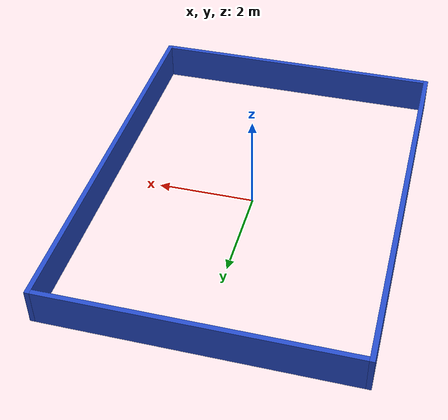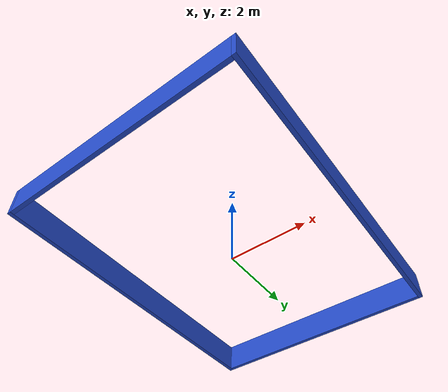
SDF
<?xml version="1.0" ?>
<sdf version='1.6'>
    <model name='Fence'>
        <static>true</static>
        <!-- Fence_Up -->
        <link name="fence_up">
            <pose>3.05 0 0.375 0 0 0</pose>
            <collision name="visual">
                <geometry>
                    <box>
                        <size>0.1 8.2 0.75</size>
                    </box>
                </geometry>
            </collision>
            <visual name="visual">
                <geometry>
                    <box>
                        <size>0.1 8.2 0.75</size>
                    </box>
                </geometry>
                <material>
                    <script>
                        <uri>file://media/materials/scripts/gazebo.material</uri>
                        <name>Gazebo/Blue</name>
                    </script>
                </material>
            </visual>
        </link>
        <!-- Fence_Down -->
        <link name="fence_down">
            <pose>-3.05 0 0.375 0 0 0</pose>
            <collision name="visual">
                <geometry>
                    <box>
                        <size>0.1 8.2 0.75</size>
                    </box>
                </geometry>
            </collision>
            <visual name="visual">
                <geometry>
                    <box>
                        <size>0.1 8.2 0.75</size>
                    </box>
                </geometry>
                <material>
                    <script>
                        <uri>file://media/materials/scripts/gazebo.material</uri>
                        <name>Gazebo/Blue</name>
                    </script>
                </material>
            </visual>
        </link>
        <!-- Fence_Left -->
        <link name="fence_left">
            <pose>0 4.05 0.375 0 0 0</pose>
            <collision name="visual">
                <geometry>
                    <box>
                        <size>6 0.1 0.75</size>
                    </box>
                </geometry>
            </collision>
            <visual name="visual">
                <geometry>
                    <box>
                        <size>6 0.1 0.75</size>
                    </box>
                </geometry>
                <material>
                    <script>
                        <uri>file://media/materials/scripts/gazebo.material</uri>
                        <name>Gazebo/Blue</name>
                    </script>
                </material>
            </visual>
        </link>
        <!-- Fence_Right -->
        <link name="fence_right">
            <pose>0 -4.05 0.375 0 0 0</pose>
            <collision name="visual">
                <geometry>
                    <box>
                        <size>6 0.1 0.75</size>
                    </box>
                </geometry>
            </collision>
            <visual name="visual">
                <geometry>
                    <box>
                        <size>6 0.1 0.755</size>
                    </box>
                </geometry>
                <material>
                    <script>
                        <uri>file://media/materials/scripts/gazebo.material</uri>
                        <name>Gazebo/Blue</name>
                    </script>
                </material>
            </visual>
        </link>
    </model>
</sdf>
